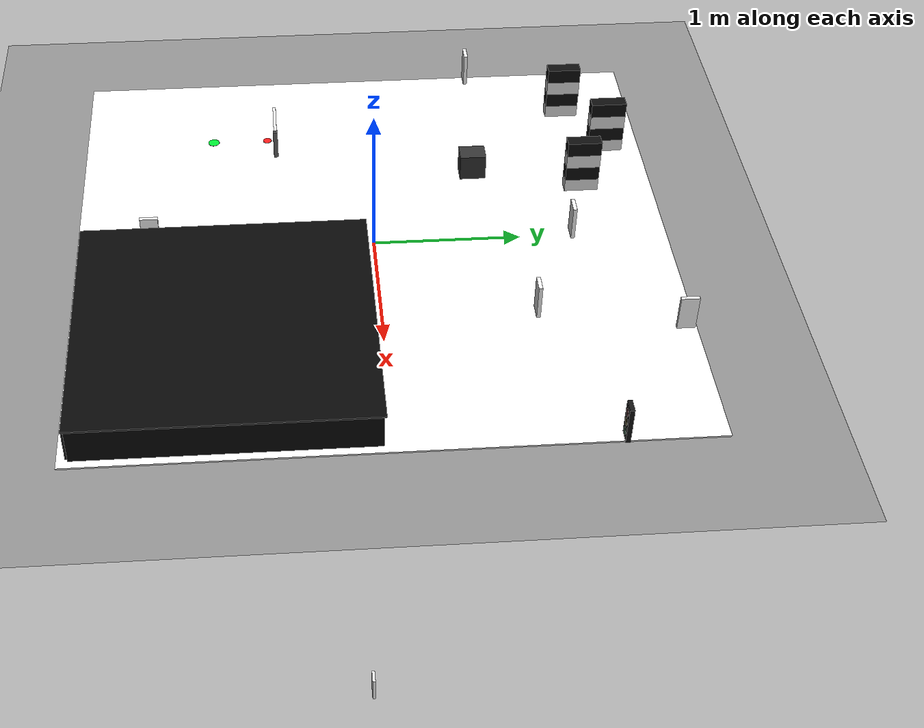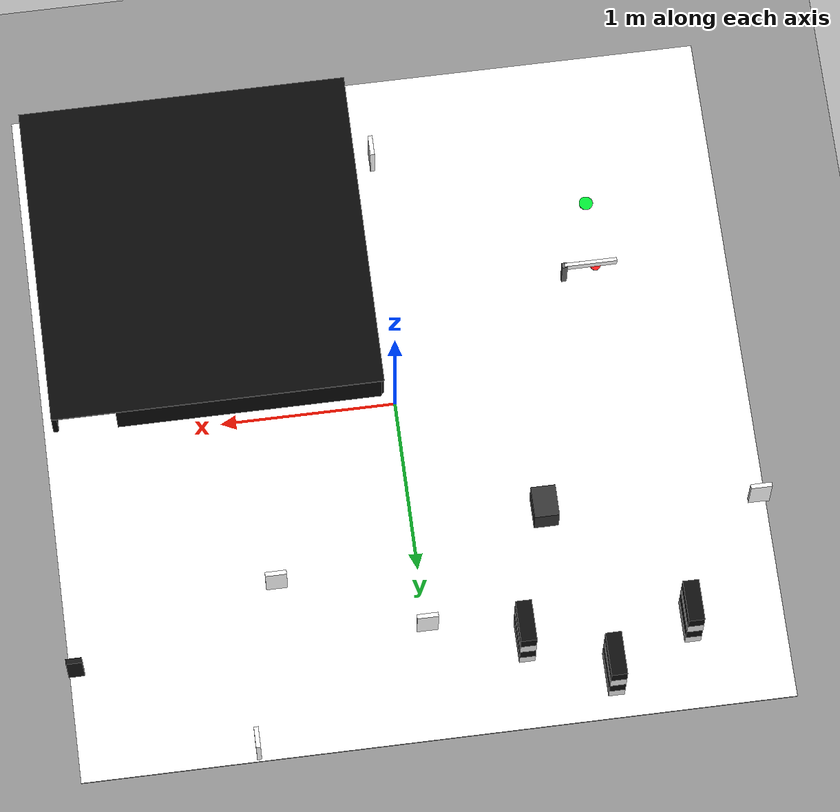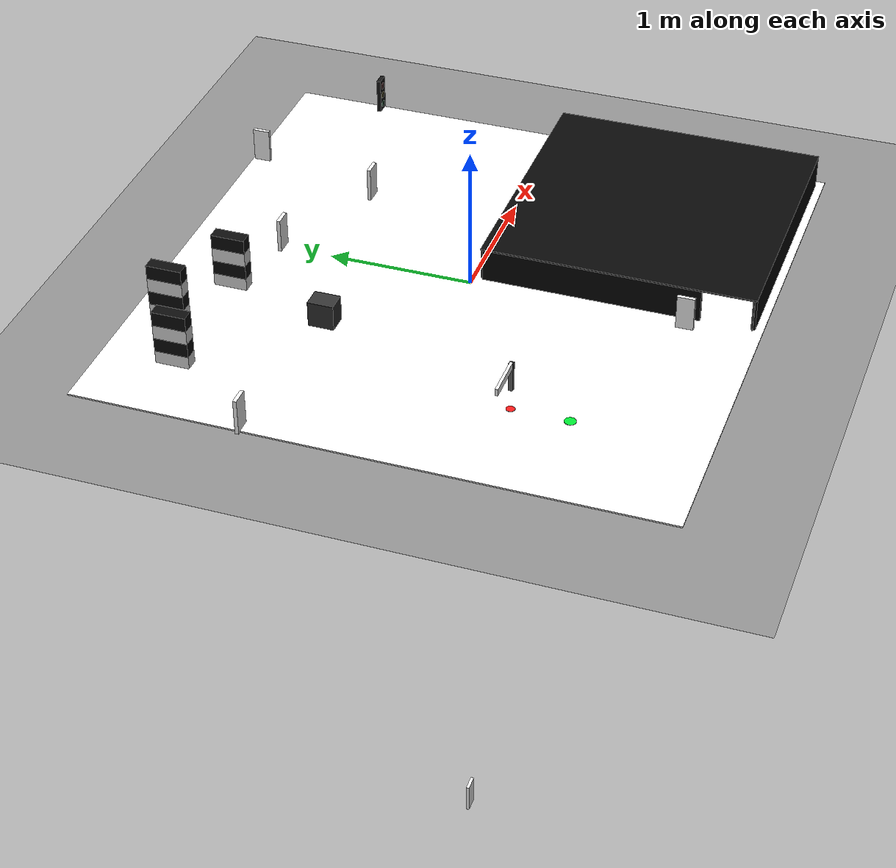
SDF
<?xml version="1.0" ?>
<!-- AutoRace competition map for Gazebo Harmonic (gz-sim 8).
     Generated by autorace_sim/scripts/gen_course_world.py from map.png;
     do not edit by hand. -->
<sdf version="1.10">
  <world name="autorace">

    <physics name="1ms" type="ignored">
      <max_step_size>0.001</max_step_size>
      <real_time_factor>1.0</real_time_factor>
    </physics>

    <plugin filename="gz-sim-physics-system"
            name="gz::sim::systems::Physics"/>
    <plugin filename="gz-sim-user-commands-system"
            name="gz::sim::systems::UserCommands"/>
    <plugin filename="gz-sim-scene-broadcaster-system"
            name="gz::sim::systems::SceneBroadcaster"/>
    <plugin filename="gz-sim-sensors-system"
            name="gz::sim::systems::Sensors">
      <render_engine>ogre2</render_engine>
    </plugin>
    <plugin filename="gz-sim-contact-system"
            name="gz::sim::systems::Contact"/>
    <plugin filename="gz-sim-imu-system"
            name="gz::sim::systems::Imu"/>

    <scene>
      <ambient>0.85 0.85 0.85 1</ambient>
      <background>0.7 0.7 0.7 1</background>
      <shadows>false</shadows>
      <grid>false</grid>
    </scene>

    <light type="directional" name="sun">
      <cast_shadows>false</cast_shadows>
      <pose>0 0 10 0 0 0</pose>
      <diffuse>0.9 0.9 0.9 1</diffuse>
      <specular>0.2 0.2 0.2 1</specular>
      <direction>-0.3 0.2 -0.9</direction>
    </light>

    <model name="ground_plane">
      <static>true</static>
      <link name="link">
        <collision name="collision">
          <geometry><plane><normal>0 0 1</normal><size>20 20</size></plane></geometry>
        </collision>
        <visual name="visual">
          <geometry><plane><normal>0 0 1</normal><size>20 20</size></plane></geometry>
          <material>
            <ambient>0.3 0.3 0.3 1</ambient>
            <diffuse>0.35 0.35 0.35 1</diffuse>
          </material>
        </visual>
      </link>
    </model>

    <include>
      <uri>model://autorace_course_map</uri>
      <name>autorace_course_map</name>
      <pose>0.000 0.000 0.000 0 0 0.0000</pose>
    </include>

    <include>
      <uri>model://autorace_traffic_light</uri>
      <name>autorace_traffic_light</name>
      <pose>1.961 1.372 0.130 0 0 0.0000</pose>
    </include>

    <include>
      <uri>model://autorace_lamp_red</uri>
      <name>autorace_lamp_red</name>
      <pose>0.000 0.000 -5.000 0 0 0.0000</pose>
    </include>

    <include>
      <uri>model://autorace_lamp_yellow</uri>
      <name>autorace_lamp_yellow</name>
      <pose>0.000 0.000 -5.000 0 0 0.0000</pose>
    </include>

    <include>
      <uri>model://autorace_lamp_green</uri>
      <name>autorace_lamp_green</name>
      <pose>0.000 0.000 -5.000 0 0 0.0000</pose>
    </include>

    <include>
      <uri>model://autorace_sign_intersection</uri>
      <name>autorace_sign_intersection</name>
      <pose>1.007 1.929 0.125 0 0 1.5708</pose>
    </include>

    <include>
      <uri>model://autorace_sign_left</uri>
      <name>autorace_sign_left</name>
      <pose>0.796 1.003 0.125 0 0 0.0000</pose>
    </include>

    <include>
      <uri>model://autorace_sign_construction</uri>
      <name>autorace_sign_construction</name>
      <pose>-0.010 1.353 0.125 0 0 0.0000</pose>
    </include>

    <include>
      <uri>model://autorace_sign_parking</uri>
      <name>autorace_sign_parking</name>
      <pose>-1.961 0.831 0.125 0 0 0.0000</pose>
    </include>

    <include>
      <uri>model://autorace_sign_tunnel</uri>
      <name>autorace_sign_tunnel</name>
      <pose>-0.050 -1.500 0.125 0 0 1.5708</pose>
    </include>

    <include>
      <uri>model://autorace_sign_right</uri>
      <name>autorace_sign_right</name>
      <pose>0.000 0.000 -5.000 0 0 0.0000</pose>
    </include>

    <include>
      <uri>model://autorace_level_bar</uri>
      <name>autorace_level_bar</name>
      <pose>-1.215 -0.634 0.000 0 0 3.1416</pose>
    </include>

    <model name="construction_1">
      <static>true</static>
      <pose>-0.537 1.497 0.200 0 0 0.0000</pose>
      <link name="link">
        <collision name="collision">
          <geometry><box><size>0.09 0.234 0.4</size></box></geometry>
        </collision>
        <visual name="band_0">
          <pose>0 0 -0.150 0 0 0</pose>
          <geometry><box><size>0.09 0.234 0.100</size></box></geometry>
          <material>
            <ambient>0.9 0.9 0.9 1</ambient>
            <diffuse>0.9 0.9 0.9 1</diffuse>
            <specular>0.05 0.05 0.05 1</specular>
          </material>
        </visual>
        <visual name="band_1">
          <pose>0 0 -0.050 0 0 0</pose>
          <geometry><box><size>0.09 0.234 0.100</size></box></geometry>
          <material>
            <ambient>0.05 0.05 0.05 1</ambient>
            <diffuse>0.05 0.05 0.05 1</diffuse>
            <specular>0.05 0.05 0.05 1</specular>
          </material>
        </visual>
        <visual name="band_2">
          <pose>0 0 0.050 0 0 0</pose>
          <geometry><box><size>0.09 0.234 0.100</size></box></geometry>
          <material>
            <ambient>0.9 0.9 0.9 1</ambient>
            <diffuse>0.9 0.9 0.9 1</diffuse>
            <specular>0.05 0.05 0.05 1</specular>
          </material>
        </visual>
        <visual name="band_3">
          <pose>0 0 0.150 0 0 0</pose>
          <geometry><box><size>0.09 0.234 0.100</size></box></geometry>
          <material>
            <ambient>0.05 0.05 0.05 1</ambient>
            <diffuse>0.05 0.05 0.05 1</diffuse>
            <specular>0.05 0.05 0.05 1</specular>
          </material>
        </visual>
      </link>
    </model>

    <model name="construction_2">
      <static>true</static>
      <pose>-1.003 1.746 0.200 0 0 0.0000</pose>
      <link name="link">
        <collision name="collision">
          <geometry><box><size>0.09 0.246 0.4</size></box></geometry>
        </collision>
        <visual name="band_0">
          <pose>0 0 -0.150 0 0 0</pose>
          <geometry><box><size>0.09 0.246 0.100</size></box></geometry>
          <material>
            <ambient>0.9 0.9 0.9 1</ambient>
            <diffuse>0.9 0.9 0.9 1</diffuse>
            <specular>0.05 0.05 0.05 1</specular>
          </material>
        </visual>
        <visual name="band_1">
          <pose>0 0 -0.050 0 0 0</pose>
          <geometry><box><size>0.09 0.246 0.100</size></box></geometry>
          <material>
            <ambient>0.05 0.05 0.05 1</ambient>
            <diffuse>0.05 0.05 0.05 1</diffuse>
            <specular>0.05 0.05 0.05 1</specular>
          </material>
        </visual>
        <visual name="band_2">
          <pose>0 0 0.050 0 0 0</pose>
          <geometry><box><size>0.09 0.246 0.100</size></box></geometry>
          <material>
            <ambient>0.9 0.9 0.9 1</ambient>
            <diffuse>0.9 0.9 0.9 1</diffuse>
            <specular>0.05 0.05 0.05 1</specular>
          </material>
        </visual>
        <visual name="band_3">
          <pose>0 0 0.150 0 0 0</pose>
          <geometry><box><size>0.09 0.246 0.100</size></box></geometry>
          <material>
            <ambient>0.05 0.05 0.05 1</ambient>
            <diffuse>0.05 0.05 0.05 1</diffuse>
            <specular>0.05 0.05 0.05 1</specular>
          </material>
        </visual>
      </link>
    </model>

    <model name="construction_3">
      <static>true</static>
      <pose>-1.469 1.497 0.200 0 0 0.0000</pose>
      <link name="link">
        <collision name="collision">
          <geometry><box><size>0.09 0.234 0.4</size></box></geometry>
        </collision>
        <visual name="band_0">
          <pose>0 0 -0.150 0 0 0</pose>
          <geometry><box><size>0.09 0.234 0.100</size></box></geometry>
          <material>
            <ambient>0.9 0.9 0.9 1</ambient>
            <diffuse>0.9 0.9 0.9 1</diffuse>
            <specular>0.05 0.05 0.05 1</specular>
          </material>
        </visual>
        <visual name="band_1">
          <pose>0 0 -0.050 0 0 0</pose>
          <geometry><box><size>0.09 0.234 0.100</size></box></geometry>
          <material>
            <ambient>0.05 0.05 0.05 1</ambient>
            <diffuse>0.05 0.05 0.05 1</diffuse>
            <specular>0.05 0.05 0.05 1</specular>
          </material>
        </visual>
        <visual name="band_2">
          <pose>0 0 0.050 0 0 0</pose>
          <geometry><box><size>0.09 0.234 0.100</size></box></geometry>
          <material>
            <ambient>0.9 0.9 0.9 1</ambient>
            <diffuse>0.9 0.9 0.9 1</diffuse>
            <specular>0.05 0.05 0.05 1</specular>
          </material>
        </visual>
        <visual name="band_3">
          <pose>0 0 0.150 0 0 0</pose>
          <geometry><box><size>0.09 0.234 0.100</size></box></geometry>
          <material>
            <ambient>0.05 0.05 0.05 1</ambient>
            <diffuse>0.05 0.05 0.05 1</diffuse>
            <specular>0.05 0.05 0.05 1</specular>
          </material>
        </visual>
      </link>
    </model>

    <model name="house_robot">
      <static>true</static>
      <pose>-0.751 0.751 0.095 0 0 0.0000</pose>
      <link name="link">
        <collision name="collision">
          <geometry><box><size>0.14 0.18 0.19</size></box></geometry>
        </collision>
        <visual name="visual">
          <geometry><box><size>0.14 0.18 0.19</size></box></geometry>
          <material>
            <ambient>0.2 0.2 0.2 1</ambient>
            <diffuse>0.2 0.2 0.2 1</diffuse>
            <specular>0.05 0.05 0.05 1</specular>
          </material>
        </visual>
      </link>
    </model>

    <model name="crossing_sensor_1">
      <static>true</static>
      <pose>-1.249 -1.084 0.011 0 0 0.0000</pose>
      <link name="link">
        <visual name="visual">
          <visibility_flags>2</visibility_flags>
          <cast_shadows>false</cast_shadows>
          <geometry><cylinder><radius>0.04</radius><length>0.002</length></cylinder></geometry>
          <material>
            <ambient>0.0 0.9 0.2 1</ambient>
            <diffuse>0.0 0.9 0.2 1</diffuse>
            <emissive>0.0 0.9 0.2 1</emissive>
          </material>
        </visual>
      </link>
    </model>

    <model name="crossing_sensor_2">
      <static>true</static>
      <pose>-1.249 -0.694 0.011 0 0 0.0000</pose>
      <link name="link">
        <visual name="visual">
          <visibility_flags>2</visibility_flags>
          <cast_shadows>false</cast_shadows>
          <geometry><cylinder><radius>0.03</radius><length>0.002</length></cylinder></geometry>
          <material>
            <ambient>1.0 0.1 0.1 1</ambient>
            <diffuse>1.0 0.1 0.1 1</diffuse>
            <emissive>1.0 0.1 0.1 1</emissive>
          </material>
        </visual>
      </link>
    </model>

    <model name="tunnel_wall_y0_a">
      <static>true</static>
      <pose>0.825 -0.070 0.120 0 0 0.0000</pose>
      <link name="link">
        <collision name="collision">
          <geometry><box><size>1.509 0.03 0.24</size></box></geometry>
        </collision>
        <visual name="visual">
          <geometry><box><size>1.509 0.03 0.24</size></box></geometry>
          <material>
            <ambient>0.03 0.03 0.03 1</ambient>
            <diffuse>0.03 0.03 0.03 1</diffuse>
            <specular>0.05 0.05 0.05 1</specular>
          </material>
        </visual>
      </link>
    </model>
    <model name="tunnel_wall_x0_a">
      <static>true</static>
      <pose>0.070 -0.822 0.120 0 0 0.0000</pose>
      <link name="link">
        <collision name="collision">
          <geometry><box><size>0.03 1.504 0.24</size></box></geometry>
        </collision>
        <visual name="visual">
          <geometry><box><size>0.03 1.504 0.24</size></box></geometry>
          <material>
            <ambient>0.03 0.03 0.03 1</ambient>
            <diffuse>0.03 0.03 0.03 1</diffuse>
            <specular>0.05 0.05 0.05 1</specular>
          </material>
        </visual>
      </link>
    </model>
    <model name="tunnel_wall_x0_b">
      <static>true</static>
      <pose>0.070 -1.926 0.120 0 0 0.0000</pose>
      <link name="link">
        <collision name="collision">
          <geometry><box><size>0.03 0.008000000000000007 0.24</size></box></geometry>
        </collision>
        <visual name="visual">
          <geometry><box><size>0.03 0.008000000000000007 0.24</size></box></geometry>
          <material>
            <ambient>0.03 0.03 0.03 1</ambient>
            <diffuse>0.03 0.03 0.03 1</diffuse>
            <specular>0.05 0.05 0.05 1</specular>
          </material>
        </visual>
      </link>
    </model>
    <model name="tunnel_wall_x1">
      <static>true</static>
      <pose>1.930 -1.000 0.120 0 0 0.0000</pose>
      <link name="link">
        <collision name="collision">
          <geometry><box><size>0.03 1.8599999999999999 0.24</size></box></geometry>
        </collision>
        <visual name="visual">
          <geometry><box><size>0.03 1.8599999999999999 0.24</size></box></geometry>
          <material>
            <ambient>0.03 0.03 0.03 1</ambient>
            <diffuse>0.03 0.03 0.03 1</diffuse>
            <specular>0.05 0.05 0.05 1</specular>
          </material>
        </visual>
      </link>
    </model>
    <model name="tunnel_wall_y1">
      <static>true</static>
      <pose>1.000 -1.930 0.120 0 0 0.0000</pose>
      <link name="link">
        <collision name="collision">
          <geometry><box><size>1.8599999999999999 0.03 0.24</size></box></geometry>
        </collision>
        <visual name="visual">
          <geometry><box><size>1.8599999999999999 0.03 0.24</size></box></geometry>
          <material>
            <ambient>0.03 0.03 0.03 1</ambient>
            <diffuse>0.03 0.03 0.03 1</diffuse>
            <specular>0.05 0.05 0.05 1</specular>
          </material>
        </visual>
      </link>
    </model>
    <model name="tunnel_roof">
      <static>true</static>
      <pose>1.000 -1.000 0.245 0 0 0.0000</pose>
      <link name="link">
        <collision name="collision">
          <geometry><box><size>1.890 1.890 0.01</size></box></geometry>
        </collision>
        <visual name="visual">
          <geometry><box><size>1.890 1.890 0.01</size></box></geometry>
          <material>
            <ambient>0.03 0.03 0.03 1</ambient>
            <diffuse>0.03 0.03 0.03 1</diffuse>
          </material>
        </visual>
      </link>
    </model>
    <model name="tunnel_obstacle_1">
      <static>true</static>
      <pose>1.000 -0.700 0.100 0 0 0.0000</pose>
      <link name="link">
        <collision name="collision">
          <geometry><box><size>0.2 0.15 0.2</size></box></geometry>
        </collision>
        <visual name="visual">
          <geometry><box><size>0.2 0.15 0.2</size></box></geometry>
          <material>
            <ambient>0.5 0.5 0.5 1</ambient>
            <diffuse>0.5 0.5 0.5 1</diffuse>
            <specular>0.05 0.05 0.05 1</specular>
          </material>
        </visual>
      </link>
    </model>
    <model name="tunnel_obstacle_2">
      <static>true</static>
      <pose>0.600 -1.300 0.100 0 0 0.0000</pose>
      <link name="link">
        <collision name="collision">
          <geometry><cylinder><radius>0.08</radius><length>0.2</length></cylinder></geometry>
        </collision>
        <visual name="visual">
          <geometry><cylinder><radius>0.08</radius><length>0.2</length></cylinder></geometry>
          <material>
            <ambient>0.5 0.5 0.5 1</ambient>
            <diffuse>0.5 0.5 0.5 1</diffuse>
          </material>
        </visual>
      </link>
    </model>
    <model name="tunnel_obstacle_3">
      <static>true</static>
      <pose>1.400 -1.200 0.100 0 0 0.0000</pose>
      <link name="link">
        <collision name="collision">
          <geometry><box><size>0.12 0.3 0.2</size></box></geometry>
        </collision>
        <visual name="visual">
          <geometry><box><size>0.12 0.3 0.2</size></box></geometry>
          <material>
            <ambient>0.5 0.5 0.5 1</ambient>
            <diffuse>0.5 0.5 0.5 1</diffuse>
            <specular>0.05 0.05 0.05 1</specular>
          </material>
        </visual>
      </link>
    </model>

  </world>
</sdf>

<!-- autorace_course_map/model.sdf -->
<!-- Generated by autorace_sim/scripts/gen_course_world.py. -->
<sdf version="1.10">
  <model name="autorace_course_map">
    <static>true</static>
    <link name="course_link">
      <collision name="course_collision">
        <pose>0 0 0.005 0 0 0</pose>
        <geometry><box><size>4 4 0.01</size></box></geometry>
        <surface>
          <friction><ode><mu>100</mu><mu2>50</mu2></ode></friction>
        </surface>
      </collision>
      <visual name="course_visual">
        <pose>0 0 0.005 0 0 0</pose>
        <cast_shadows>false</cast_shadows>
        <geometry><box><size>4 4 0.01</size></box></geometry>
        <material>
          <diffuse>1 1 1 1</diffuse>
          <specular>0.1 0.1 0.1 1</specular>
          <pbr>
            <metal>
              <albedo_map>model://autorace_course_map/materials/textures/course_map.png</albedo_map>
              <metalness>0.0</metalness>
              <roughness>0.9</roughness>
            </metal>
          </pbr>
        </material>
      </visual>
    </link>
  </model>
</sdf>

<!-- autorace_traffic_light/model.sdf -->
<sdf version="1.10">
  <model name="autorace_traffic_light">
    <static>true</static>
    <link name="housing">
      <collision name="collision">
        <geometry>
          <box><size>0.09 0.03 0.26</size></box>
        </geometry>
      </collision>
      <visual name="visual">
        <geometry>
          <box><size>0.09 0.03 0.26</size></box>
        </geometry>
        <material>
          <ambient>0.05 0.05 0.05 1</ambient>
          <diffuse>0.08 0.08 0.08 1</diffuse>
          <specular>0.02 0.02 0.02 1</specular>
        </material>
      </visual>

      <!-- Dark sockets. The lit lamp models sit just in front of these. -->
      <visual name="socket_red">
        <pose>0 -0.016 0.075 1.5708 0 0</pose>
        <geometry><cylinder><radius>0.026</radius><length>0.002</length></cylinder></geometry>
        <material>
          <ambient>0.12 0.02 0.02 1</ambient>
          <diffuse>0.15 0.02 0.02 1</diffuse>
        </material>
      </visual>
      <visual name="socket_yellow">
        <pose>0 -0.016 0.0 1.5708 0 0</pose>
        <geometry><cylinder><radius>0.026</radius><length>0.002</length></cylinder></geometry>
        <material>
          <ambient>0.13 0.11 0.02 1</ambient>
          <diffuse>0.16 0.14 0.02 1</diffuse>
        </material>
      </visual>
      <visual name="socket_green">
        <pose>0 -0.016 -0.075 1.5708 0 0</pose>
        <geometry><cylinder><radius>0.026</radius><length>0.002</length></cylinder></geometry>
        <material>
          <ambient>0.02 0.12 0.06 1</ambient>
          <diffuse>0.02 0.15 0.07 1</diffuse>
        </material>
      </visual>
    </link>
  </model>
</sdf>

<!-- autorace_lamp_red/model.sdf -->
<sdf version="1.10">
  <model name="autorace_lamp_red">
    <!-- Not static: set_pose has to be able to teleport it. No collision and
         no gravity so it never disturbs the robot. -->
    <static>false</static>
    <link name="lamp">
      <gravity>false</gravity>
      <kinematic>true</kinematic>
      <inertial>
        <mass>0.001</mass>
        <inertia><ixx>1e-6</ixx><iyy>1e-6</iyy><izz>1e-6</izz>
          <ixy>0</ixy><ixz>0</ixz><iyz>0</iyz></inertia>
      </inertial>
      <visual name="visual">
        <pose>0 0 0 1.5708 0 0</pose>
        <geometry><cylinder><radius>0.024</radius><length>0.004</length></cylinder></geometry>
        <material>
          <ambient>1.0 0.05 0.05 1</ambient>
          <diffuse>1.0 0.05 0.05 1</diffuse>
          <specular>0.2 0.2 0.2 1</specular>
          <emissive>1.0 0.05 0.05 1</emissive>
        </material>
      </visual>
    </link>
  </model>
</sdf>

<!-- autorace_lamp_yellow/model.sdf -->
<sdf version="1.10">
  <model name="autorace_lamp_yellow">
    <!-- Not static: set_pose has to be able to teleport it. No collision and
         no gravity so it never disturbs the robot. -->
    <static>false</static>
    <link name="lamp">
      <gravity>false</gravity>
      <kinematic>true</kinematic>
      <inertial>
        <mass>0.001</mass>
        <inertia><ixx>1e-6</ixx><iyy>1e-6</iyy><izz>1e-6</izz>
          <ixy>0</ixy><ixz>0</ixz><iyz>0</iyz></inertia>
      </inertial>
      <visual name="visual">
        <pose>0 0 0 1.5708 0 0</pose>
        <geometry><cylinder><radius>0.024</radius><length>0.004</length></cylinder></geometry>
        <material>
          <ambient>1.0 0.85 0.05 1</ambient>
          <diffuse>1.0 0.85 0.05 1</diffuse>
          <specular>0.2 0.2 0.2 1</specular>
          <emissive>1.0 0.85 0.05 1</emissive>
        </material>
      </visual>
    </link>
  </model>
</sdf>

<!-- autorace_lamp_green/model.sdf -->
<sdf version="1.10">
  <model name="autorace_lamp_green">
    <!-- Not static: set_pose has to be able to teleport it. No collision and
         no gravity so it never disturbs the robot. -->
    <static>false</static>
    <link name="lamp">
      <gravity>false</gravity>
      <kinematic>true</kinematic>
      <inertial>
        <mass>0.001</mass>
        <inertia><ixx>1e-6</ixx><iyy>1e-6</iyy><izz>1e-6</izz>
          <ixy>0</ixy><ixz>0</ixz><iyz>0</iyz></inertia>
      </inertial>
      <visual name="visual">
        <pose>0 0 0 1.5708 0 0</pose>
        <geometry><cylinder><radius>0.024</radius><length>0.004</length></cylinder></geometry>
        <material>
          <ambient>0.05 1.0 0.2 1</ambient>
          <diffuse>0.05 1.0 0.2 1</diffuse>
          <specular>0.2 0.2 0.2 1</specular>
          <emissive>0.05 1.0 0.2 1</emissive>
        </material>
      </visual>
    </link>
  </model>
</sdf>

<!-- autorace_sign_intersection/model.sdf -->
<sdf version="1.10">
  <model name="autorace_sign_intersection">
    <static>true</static>
    <link name="box">
      <pose>0 0 0 0 0 0</pose>
      <collision name="collision">
        <geometry>
          <box>
            <size>0.12 0.025 0.25</size>
          </box>
        </geometry>
      </collision>
      <visual name="visual">
        <geometry>
          <box>
            <size>0.12 0.025 0.25</size>
          </box>
        </geometry>
                <material>
          <diffuse>1 1 1 1</diffuse>
          <specular>0.1 0.1 0.1 1</specular>
          <pbr>
            <metal>
              <albedo_map>model://autorace_sign_intersection/materials/textures/traffic_intersection.png</albedo_map>
              <metalness>0.0</metalness>
              <roughness>0.9</roughness>
            </metal>
          </pbr>
        </material>
      </visual>
    </link>
  </model>
</sdf>

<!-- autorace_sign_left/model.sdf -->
<sdf version="1.10">
  <model name="autorace_sign_left">
    <static>true</static>
    <link name="box">
      <pose>0 0 0 0 0 0</pose>
      <collision name="collision">
        <geometry>
          <box>
            <size>0.12 0.025 0.25</size>
          </box>
        </geometry>
      </collision>
      <visual name="visual">
        <geometry>
          <box>
            <size>0.12 0.025 0.25</size>
          </box>
        </geometry>
                <material>
          <diffuse>1 1 1 1</diffuse>
          <specular>0.1 0.1 0.1 1</specular>
          <pbr>
            <metal>
              <albedo_map>model://autorace_sign_left/materials/textures/traffic_left.png</albedo_map>
              <metalness>0.0</metalness>
              <roughness>0.9</roughness>
            </metal>
          </pbr>
        </material>
      </visual>
    </link>
  </model>
</sdf>

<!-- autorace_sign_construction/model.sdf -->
<sdf version="1.10">
  <model name="autorace_sign_construction">
    <static>true</static>
    <link name="box">
      <pose>0 0 0 0 0 0</pose>
      <collision name="collision">
        <geometry>
          <box>
            <size>0.12 0.025 0.25</size>
          </box>
        </geometry>
      </collision>
      <visual name="visual">
        <geometry>
          <box>
            <size>0.12 0.025 0.25</size>
          </box>
        </geometry>
                <material>
          <diffuse>1 1 1 1</diffuse>
          <specular>0.1 0.1 0.1 1</specular>
          <pbr>
            <metal>
              <albedo_map>model://autorace_sign_construction/materials/textures/traffic_construction.png</albedo_map>
              <metalness>0.0</metalness>
              <roughness>0.9</roughness>
            </metal>
          </pbr>
        </material>
      </visual>
    </link>
  </model>
</sdf>

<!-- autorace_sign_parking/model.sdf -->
<sdf version="1.10">
  <model name="autorace_sign_parking">
    <static>true</static>
    <link name="box">
      <pose>0 0 0 0 0 0</pose>
      <collision name="collision">
        <geometry>
          <box>
            <size>0.12 0.025 0.25</size>
          </box>
        </geometry>
      </collision>
      <visual name="visual">
        <geometry>
          <box>
            <size>0.12 0.025 0.25</size>
          </box>
        </geometry>
                <material>
          <diffuse>1 1 1 1</diffuse>
          <specular>0.1 0.1 0.1 1</specular>
          <pbr>
            <metal>
              <albedo_map>model://autorace_sign_parking/materials/textures/traffic_parking.png</albedo_map>
              <metalness>0.0</metalness>
              <roughness>0.9</roughness>
            </metal>
          </pbr>
        </material>
      </visual>
    </link>
  </model>
</sdf>

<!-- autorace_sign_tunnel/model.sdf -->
<sdf version="1.10">
  <model name="autorace_sign_tunnel">
    <pose>0 0 0.125 0 0 0</pose>
    <link name="box">
      <pose>0 0 0 0 0 0</pose>
      <collision name="collision">
        <geometry>
          <box>
            <size>0.12 0.025 0.25</size>
          </box>
        </geometry>
      </collision>
      <visual name="visual">
        <geometry>
          <box>
            <size>0.12 0.025 0.25</size>
          </box>
        </geometry>
                <material>
          <diffuse>1 1 1 1</diffuse>
          <specular>0.1 0.1 0.1 1</specular>
          <pbr>
            <metal>
              <albedo_map>model://autorace_sign_tunnel/materials/textures/tunnel.png</albedo_map>
              <metalness>0.0</metalness>
              <roughness>0.9</roughness>
            </metal>
          </pbr>
        </material>
      </visual>
    </link>
      <static>true</static>
  </model>
</sdf>

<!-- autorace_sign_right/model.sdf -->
<sdf version="1.10">
  <model name="autorace_sign_right">
    <static>true</static>
    <link name="box">
      <pose>0 0 0 0 0 0</pose>
      <collision name="collision">
        <geometry>
          <box>
            <size>0.12 0.025 0.25</size>
          </box>
        </geometry>
      </collision>
      <visual name="visual">
        <geometry>
          <box>
            <size>0.12 0.025 0.25</size>
          </box>
        </geometry>
                <material>
          <diffuse>1 1 1 1</diffuse>
          <specular>0.1 0.1 0.1 1</specular>
          <pbr>
            <metal>
              <albedo_map>model://autorace_sign_right/materials/textures/traffic_right.png</albedo_map>
              <metalness>0.0</metalness>
              <roughness>0.9</roughness>
            </metal>
          </pbr>
        </material>
      </visual>
    </link>
  </model>
</sdf>

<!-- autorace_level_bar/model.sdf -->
<sdf version="1.10">
  <model name="autorace_level_bar">
    <link name="post">
      <pose>-0.16 0 0.11 0 0 0</pose>
      <collision name="collision">
        <geometry><box><size>0.03 0.03 0.22</size></box></geometry>
      </collision>
      <visual name="visual">
        <geometry><box><size>0.03 0.03 0.22</size></box></geometry>
        <material>
          <ambient>0.3 0.3 0.3 1</ambient>
          <diffuse>0.4 0.4 0.4 1</diffuse>
        </material>
      </visual>
    </link>

    <joint name="post_fixed" type="fixed">
      <parent>world</parent>
      <child>post</child>
    </joint>

    <link name="bar">
      <!-- Link origin sits on the hinge; the bar itself extends towards +x. -->
      <pose>-0.16 0 0.2 0 0 0</pose>
      <inertial>
        <pose>0.15 0 0 0 0 0</pose>
        <mass>0.05</mass>
        <inertia><ixx>1e-4</ixx><iyy>1e-3</iyy><izz>1e-3</izz>
          <ixy>0</ixy><ixz>0</ixz><iyz>0</iyz></inertia>
      </inertial>
      <collision name="collision">
        <pose>0.15 0 0 0 0 0</pose>
        <geometry><box><size>0.3 0.02 0.05</size></box></geometry>
      </collision>
      <visual name="visual">
        <pose>0.15 0 0 0 0 0</pose>
        <geometry><box><size>0.3 0.02 0.05</size></box></geometry>
        <material>
          <diffuse>1 1 1 1</diffuse>
          <pbr>
            <metal>
              <albedo_map>model://autorace_level_bar/materials/textures/traffic_bar.png</albedo_map>
              <metalness>0.0</metalness>
              <roughness>0.9</roughness>
            </metal>
          </pbr>
        </material>
      </visual>
    </link>

    <joint name="bar_joint" type="revolute">
      <parent>post</parent>
      <child>bar</child>
      <axis>
        <xyz>0 -1 0</xyz>
        <limit><lower>0.0</lower><upper>1.5708</upper>
          <effort>10</effort><velocity>2.0</velocity></limit>
        <dynamics><damping>0.2</damping></dynamics>
      </axis>
    </joint>

    <plugin filename="gz-sim-joint-position-controller-system"
            name="gz::sim::systems::JointPositionController">
      <joint_name>bar_joint</joint_name>
      <topic>/level_bar/cmd</topic>
      <p_gain>5.0</p_gain>
      <i_gain>0.05</i_gain>
      <d_gain>0.5</d_gain>
    </plugin>
  </model>
</sdf>
